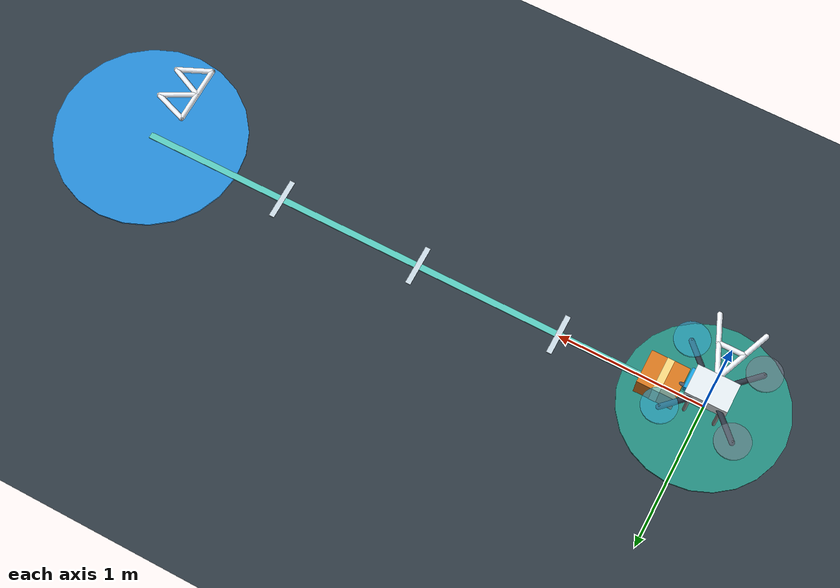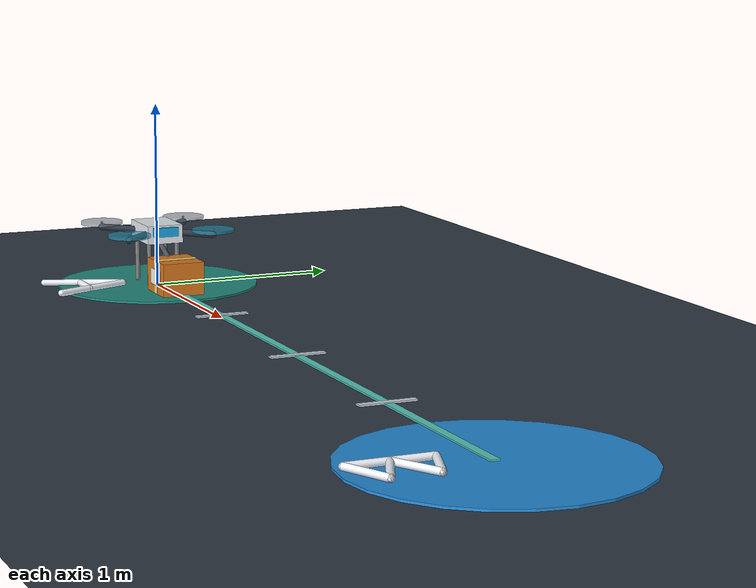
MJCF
<mujoco model="RealityPatch uneven-load parcel delivery">
  <compiler angle="radian" />
  <option timestep="0.002" integrator="implicitfast" gravity="0 0 -9.81" iterations="100" />
  <visual>
    <global azimuth="135" elevation="-20" />
    <map znear="0.01" zfar="100" />
    <headlight ambient="0.45 0.45 0.45" diffuse="0.7 0.7 0.7" />
  </visual>
  <asset>
    <texture name="sky" type="skybox" builtin="gradient" rgb1="0.18 0.27 0.39" rgb2="0.55 0.66 0.74" width="512" height="3072" />
    <texture name="floor_grid" type="2d" builtin="checker" rgb1="0.16 0.20 0.24" rgb2="0.21 0.26 0.30" width="512" height="512" />
    <material name="floor" texture="floor_grid" texrepeat="20 20" reflectance="0.1" />
  </asset>
  <default>
    <geom friction="0.8 0.005 0.001" solref="0.015 1" solimp="0.9 0.95 0.001" />
    <motor ctrllimited="true" ctrlrange="0 6" />
  </default>
  <worldbody>
    <light pos="0 -3 7" dir="0 0 -1" diffuse="0.8 0.8 0.8" />
    <light pos="3 3 6" dir="-0.4 -0.4 -1" diffuse="0.5 0.5 0.5" />
    <geom name="ground" type="plane" size="20 20 0.1" material="floor" />
    <geom name="landing_pad" type="cylinder" size="0.55 0.006" pos="0 0 0.006" rgba="0.14 0.55 0.50 1" contype="0" conaffinity="0" />
    <camera name="overview" pos="3.7 -4 3" xyaxes="0.8 0.6 0 -0.19 0.25 0.95" fovy="38" />
    <camera name="side" pos="0 -4 2.0" xyaxes="1 0 0 0 0.24 0.971" fovy="40" />
    <body name="drone" pos="0 0 .30" simple="false">
      <freejoint name="drone_free" />
      <inertial pos="0 0 0" mass="1.2" diaginertia="0.022 0.022 0.042" />
      <geom name="fuselage" type="box" size="0.14 0.10 0.05" rgba="0.9 0.93 0.95 1" />
      <geom name="nose" type="box" pos="0.14 0 0.015" size="0.02 0.07 0.025" rgba="0.1 0.65 0.9 1" contype="0" conaffinity="0" />
      <geom name="arm_0" type="capsule" fromto="0 0 0 0.24 0.24 0" size="0.018" rgba="0.18 0.22 0.27 1" />
      <geom name="arm_1" type="capsule" fromto="0 0 0 0.24 -0.24 0" size="0.018" rgba="0.18 0.22 0.27 1" />
      <geom name="arm_2" type="capsule" fromto="0 0 0 -0.24 -0.24 0" size="0.018" rgba="0.18 0.22 0.27 1" />
      <geom name="arm_3" type="capsule" fromto="0 0 0 -0.24 0.24 0" size="0.018" rgba="0.18 0.22 0.27 1" />
      <geom name="rotor_0" type="cylinder" pos="0.24 0.24 0.025" size="0.115 0.008" rgba="0.18 0.65 0.8 0.6" />
      <geom name="rotor_1" type="cylinder" pos="0.24 -0.24 0.025" size="0.115 0.008" rgba="0.18 0.65 0.8 0.6" />
      <geom name="rotor_2" type="cylinder" pos="-0.24 -0.24 0.025" size="0.115 0.008" rgba="0.45 0.5 0.55 0.6" />
      <geom name="rotor_3" type="cylinder" pos="-0.24 0.24 0.025" size="0.115 0.008" rgba="0.45 0.5 0.55 0.6" />
      <geom name="leg_0" type="capsule" fromto="0.1 0.08 -0.04 0.1 0.08 -0.276" size="0.012" />
      <geom name="leg_1" type="capsule" fromto="0.1 -0.08 -0.04 0.1 -0.08 -0.276" size="0.012" />
      <geom name="leg_2" type="capsule" fromto="-0.1 -0.08 -0.04 -0.1 -0.08 -0.276" size="0.012" />
      <geom name="leg_3" type="capsule" fromto="-0.1 0.08 -0.04 -0.1 0.08 -0.276" size="0.012" />
      <site name="rotor_site_0" pos="0.24 0.24 0.025" size="0.006" />
      <site name="rotor_site_1" pos="0.24 -0.24 0.025" size="0.006" />
      <site name="rotor_site_2" pos="-0.24 -0.24 0.025" size="0.006" />
      <site name="rotor_site_3" pos="-0.24 0.24 0.025" size="0.006" />
      <site name="imu" pos="0 0 0" size="0.005" />
      <camera name="chase" mode="trackcom" pos="-1.4 -2.1 0.9" xyaxes="0.832 -0.554 0 0.187 0.281 0.941" fovy="32" />
      <geom name="parcel_mount" type="capsule" fromto="0 0 -.04 .30 0 -.17" size=".014" rgba=".3 .32 .35 1" contype="0" conaffinity="0" />
    </body>
    <geom name="destination_pad" type="cylinder" size=".65 .006" pos="4 0 .006" rgba=".15 .55 .85 1" contype="0" conaffinity="0" />
    <geom name="delivery_route" type="box" size="2 .022 .004" pos="2 0 .015" rgba=".35 .8 .75 1" contype="0" conaffinity="0" />
    <geom name="delivery_distance_1" type="box" size=".018 .14 .004" pos="1 0 .019" rgba=".8 .86 .9 1" contype="0" conaffinity="0" />
    <geom name="delivery_distance_2" type="box" size=".018 .14 .004" pos="2 0 .019" rgba=".8 .86 .9 1" contype="0" conaffinity="0" />
    <geom name="delivery_distance_3" type="box" size=".018 .14 .004" pos="3 0 .019" rgba=".8 .86 .9 1" contype="0" conaffinity="0" />
    <geom name="pad_A_0" type="capsule" fromto="-0.16 -0.6000000000000001 .025 0 -0.2 .025" size=".018" rgba=".95 .97 1 1" contype="0" conaffinity="0" />
    <geom name="pad_A_1" type="capsule" fromto="0 -0.2 .025 0.16 -0.6000000000000001 .025" size=".018" rgba=".95 .97 1 1" contype="0" conaffinity="0" />
    <geom name="pad_A_2" type="capsule" fromto="-0.09 -0.42000000000000004 .025 0.09 -0.42000000000000004 .025" size=".018" rgba=".95 .97 1 1" contype="0" conaffinity="0" />
    <geom name="pad_B_0" type="capsule" fromto="3.88 -0.6000000000000001 .025 3.88 -0.2 .025" size=".018" rgba=".95 .97 1 1" contype="0" conaffinity="0" />
    <geom name="pad_B_1" type="capsule" fromto="3.88 -0.2 .025 4.1 -0.28 .025" size=".018" rgba=".95 .97 1 1" contype="0" conaffinity="0" />
    <geom name="pad_B_2" type="capsule" fromto="4.1 -0.28 .025 3.88 -0.4 .025" size=".018" rgba=".95 .97 1 1" contype="0" conaffinity="0" />
    <geom name="pad_B_3" type="capsule" fromto="3.88 -0.4 .025 4.1 -0.5 .025" size=".018" rgba=".95 .97 1 1" contype="0" conaffinity="0" />
    <geom name="pad_B_4" type="capsule" fromto="4.1 -0.5 .025 3.88 -0.6000000000000001 .025" size=".018" rgba=".95 .97 1 1" contype="0" conaffinity="0" />
    <body name="parcel" pos=".30 0 .10">
      <freejoint name="parcel_free" />
      <geom name="parcel_box" type="box" size=".13 .115 .09" mass=".36" rgba=".85 .47 .12 1" />
      <geom name="parcel_tape" type="box" size=".024 .116 .091" rgba=".97 .85 .5 1" contype="0" conaffinity="0" mass="0" />
      <geom name="parcel_label" type="box" pos="0 -.116 0" size=".075 .001 .042" rgba=".98 .97 .91 1" contype="0" conaffinity="0" mass="0" />
    </body>
  </worldbody>
  <actuator>
    <motor name="rotor_motor_0" site="rotor_site_0" gear="0 0 1 0 0 0.018" />
    <motor name="rotor_motor_1" site="rotor_site_1" gear="0 0 1 0 0 -0.018" />
    <motor name="rotor_motor_2" site="rotor_site_2" gear="0 0 1 0 0 0.018" />
    <motor name="rotor_motor_3" site="rotor_site_3" gear="0 0 1 0 0 -0.018" />
  </actuator>
  <sensor>
    <gyro name="angular_velocity" site="imu" />
    <accelerometer name="specific_force" site="imu" />
  </sensor>
  <contact>
    <exclude body1="drone" body2="parcel" />
  </contact>
  <equality>
    <weld name="parcel_latch" body1="drone" body2="parcel" solref=".004 1" solimp=".99 .999 .001" />
  </equality>
</mujoco>
